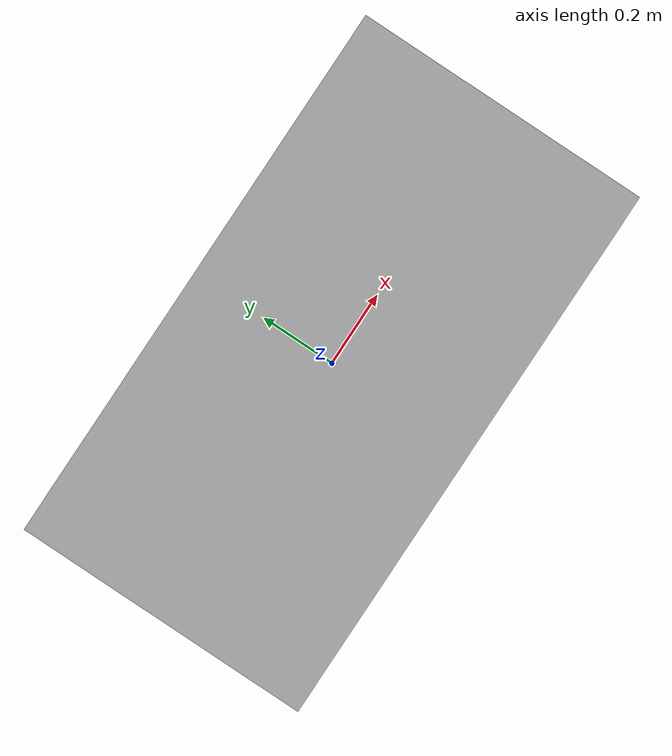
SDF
<?xml version="1.0" ?>
<sdf version="1.5">
  <model name="grass">
    <static>true</static>
    <link name="link">
      <pose>0 0 0 0 0 0</pose>

      <collision name="collision">
        <geometry>
          <mesh>
            <uri>model://grass/meshes/grass.obj</uri>
          </mesh>
        </geometry>
        <surface>
          <contact>
            <ode/>
          </contact>
          <bounce/>
          <friction>
            <ode>
              <mu>0.2</mu>
              <mu2>0.2</mu2>
            </ode>
            <ode/>
          </friction>
        </surface>
      </collision>

      <inertial>
        <pose>0 0 0 0 0 0</pose>
        <mass>1</mass>
        <inertia>
          <ixx>1</ixx>
          <ixy>0</ixy>
          <ixz>0</ixz>
          <iyy>1</iyy>
          <iyz>0</iyz>
          <izz>1</izz>
        </inertia>
      </inertial>

      <visual name="visual_abcedf">
        <geometry>
          <mesh>
            <uri>model://grass/meshes/grass.obj</uri>
          </mesh>
        </geometry>
        <material>
          <script>
            <uri>model://grass/materials/scripts</uri>
            <uri>model://grass/materials/textures</uri>
            <name>grass/Diffuse</name>
          </script>
        </material>
      </visual>
    </link>
  </model>
</sdf>
